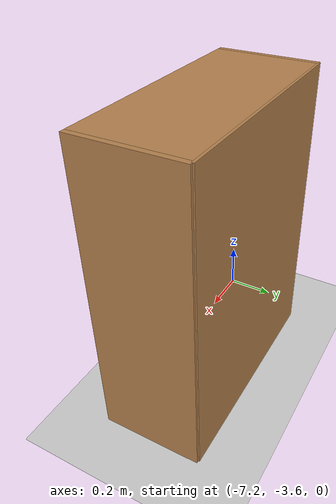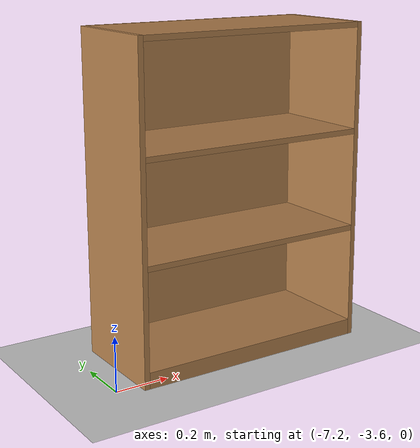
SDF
<sdf version="1.7">
 <world name="default">
  <model name="ground_plane">
   <static>1</static>
   <link name="link">
    <collision name="collision">
     <geometry><plane><normal>0 0 1</normal><size>100 100</size></plane></geometry>
     <surface><friction><ode><mu>1</mu><mu2>1</mu2></ode></friction></surface>
    </collision>
    <visual name="visual">
     <cast_shadows>0</cast_shadows>
     <geometry><plane><normal>0 0 1</normal><size>100 100</size></plane></geometry>
     <material>
      <script><uri>file://media/materials/scripts/gazebo.material</uri><name>Gazebo/Grey</name></script>
     </material>
    </visual>
    <velocity_decay><linear>0</linear><angular>0</angular></velocity_decay>
   </link>
  </model>
  <model name="bookshelf_0">
   <link name="link">
    <inertial><mass>1</mass></inertial>
    <visual name="visual1">
     <pose>0 0.005 0.6 0 -0 0</pose>
     <geometry><box><size>0.9 0.01 1.2</size></box></geometry>
     <material>
      <script><uri>file://media/materials/scripts/gazebo.material</uri><name>Gazebo/Wood</name></script>
      <shader type="pixel"/>
     </material>
    </visual>
    <visual name="visual7">
     <pose>0 -0.195 0.8 0 -0 0</pose>
     <geometry><box><size>0.88 0.4 0.02</size></box></geometry>
     <material>
      <script><uri>file://media/materials/scripts/gazebo.material</uri><name>Gazebo/Wood</name></script>
      <shader type="pixel"/>
     </material>
    </visual>
    <visual name="visual5">
     <pose>0 -0.195 1.19 0 -0 0</pose>
     <geometry><box><size>0.88 0.4 0.02</size></box></geometry>
     <material>
      <script><uri>file://media/materials/scripts/gazebo.material</uri><name>Gazebo/Wood</name></script>
      <shader type="pixel"/>
     </material>
    </visual>
    <visual name="visual6">
     <pose>0 -0.195 0.43 0 -0 0</pose>
     <geometry><box><size>0.88 0.4 0.02</size></box></geometry>
     <material>
      <script><uri>file://media/materials/scripts/gazebo.material</uri><name>Gazebo/Wood</name></script>
      <shader type="pixel"/>
     </material>
    </visual>
    <visual name="visual3">
     <pose>-0.45 -0.195 0.6 0 -0 0</pose>
     <geometry><box><size>0.02 0.4 1.2</size></box></geometry>
     <material>
      <script><uri>file://media/materials/scripts/gazebo.material</uri><name>Gazebo/Wood</name></script>
      <shader type="pixel"/>
     </material>
    </visual>
    <visual name="visual2">
     <pose>0.45 -0.195 0.6 0 -0 0</pose>
     <geometry><box><size>0.02 0.4 1.2</size></box></geometry>
     <material>
      <script><uri>file://media/materials/scripts/gazebo.material</uri><name>Gazebo/Wood</name></script>
      <shader type="pixel"/>
     </material>
    </visual>
    <visual name="visual4">
     <pose>0 -0.195 0.03 0 -0 0</pose>
     <geometry><box><size>0.88 0.4 0.06</size></box></geometry>
     <material>
      <script><uri>file://media/materials/scripts/gazebo.material</uri><name>Gazebo/Wood</name></script>
      <shader type="pixel"/>
     </material>
    </visual>
    <collision name="back">
     <pose>0 0.005 0.6 0 -0 0</pose>
     <geometry><box><size>0.9 0.01 1.2</size></box></geometry>
     <surface>
      <friction>
       <ode><mu>1</mu><mu2>1</mu2><fdir1>0 0 0</fdir1><slip1>0</slip1><slip2>0</slip2></ode>
       <torsional>
        <coefficient>1</coefficient>
        <patch_radius>0</patch_radius>
        <surface_radius>0</surface_radius>
        <use_patch_radius>1</use_patch_radius>
        <ode><slip>0</slip></ode>
       </torsional>
      </friction>
      <bounce><restitution_coefficient>0</restitution_coefficient><threshold>1e+06</threshold></bounce>
      <contact>
       <collide_without_contact>0</collide_without_contact>
       <collide_without_contact_bitmask>1</collide_without_contact_bitmask>
       <collide_bitmask>1</collide_bitmask>
       <ode>
        <soft_cfm>0</soft_cfm>
        <soft_erp>0.2</soft_erp>
        <kp>1e+13</kp>
        <kd>1</kd>
        <max_vel>0.01</max_vel>
        <min_depth>0</min_depth>
       </ode>
       <bullet>
        <split_impulse>1</split_impulse>
        <split_impulse_penetration_threshold>-0.01</split_impulse_penetration_threshold>
        <soft_cfm>0</soft_cfm>
        <soft_erp>0.2</soft_erp>
        <kp>1e+13</kp>
        <kd>1</kd>
       </bullet>
      </contact>
     </surface>
    </collision>
    <collision name="right_side">
     <pose>-0.45 -0.195 0.6 0 -0 0</pose>
     <geometry><box><size>0.02 0.4 1.2</size></box></geometry>
     <surface>
      <friction>
       <ode><mu>1</mu><mu2>1</mu2><fdir1>0 0 0</fdir1><slip1>0</slip1><slip2>0</slip2></ode>
       <torsional>
        <coefficient>1</coefficient>
        <patch_radius>0</patch_radius>
        <surface_radius>0</surface_radius>
        <use_patch_radius>1</use_patch_radius>
        <ode><slip>0</slip></ode>
       </torsional>
      </friction>
      <bounce><restitution_coefficient>0</restitution_coefficient><threshold>1e+06</threshold></bounce>
      <contact>
       <collide_without_contact>0</collide_without_contact>
       <collide_without_contact_bitmask>1</collide_without_contact_bitmask>
       <collide_bitmask>1</collide_bitmask>
       <ode>
        <soft_cfm>0</soft_cfm>
        <soft_erp>0.2</soft_erp>
        <kp>1e+13</kp>
        <kd>1</kd>
        <max_vel>0.01</max_vel>
        <min_depth>0</min_depth>
       </ode>
       <bullet>
        <split_impulse>1</split_impulse>
        <split_impulse_penetration_threshold>-0.01</split_impulse_penetration_threshold>
        <soft_cfm>0</soft_cfm>
        <soft_erp>0.2</soft_erp>
        <kp>1e+13</kp>
        <kd>1</kd>
       </bullet>
      </contact>
     </surface>
    </collision>
    <collision name="left_side">
     <pose>0.45 -0.195 0.6 0 -0 0</pose>
     <geometry><box><size>0.02 0.4 1.2</size></box></geometry>
     <surface>
      <friction>
       <ode><mu>1</mu><mu2>1</mu2><fdir1>0 0 0</fdir1><slip1>0</slip1><slip2>0</slip2></ode>
       <torsional>
        <coefficient>1</coefficient>
        <patch_radius>0</patch_radius>
        <surface_radius>0</surface_radius>
        <use_patch_radius>1</use_patch_radius>
        <ode><slip>0</slip></ode>
       </torsional>
      </friction>
      <bounce><restitution_coefficient>0</restitution_coefficient><threshold>1e+06</threshold></bounce>
      <contact>
       <collide_without_contact>0</collide_without_contact>
       <collide_without_contact_bitmask>1</collide_without_contact_bitmask>
       <collide_bitmask>1</collide_bitmask>
       <ode>
        <soft_cfm>0</soft_cfm>
        <soft_erp>0.2</soft_erp>
        <kp>1e+13</kp>
        <kd>1</kd>
        <max_vel>0.01</max_vel>
        <min_depth>0</min_depth>
       </ode>
       <bullet>
        <split_impulse>1</split_impulse>
        <split_impulse_penetration_threshold>-0.01</split_impulse_penetration_threshold>
        <soft_cfm>0</soft_cfm>
        <soft_erp>0.2</soft_erp>
        <kp>1e+13</kp>
        <kd>1</kd>
       </bullet>
      </contact>
     </surface>
    </collision>
    <collision name="high_shelf">
     <pose>0 -0.195 0.8 0 -0 0</pose>
     <geometry><box><size>0.88 0.4 0.02</size></box></geometry>
     <surface>
      <friction>
       <ode><mu>1</mu><mu2>1</mu2><fdir1>0 0 0</fdir1><slip1>0</slip1><slip2>0</slip2></ode>
       <torsional>
        <coefficient>1</coefficient>
        <patch_radius>0</patch_radius>
        <surface_radius>0</surface_radius>
        <use_patch_radius>1</use_patch_radius>
        <ode><slip>0</slip></ode>
       </torsional>
      </friction>
      <bounce><restitution_coefficient>0</restitution_coefficient><threshold>1e+06</threshold></bounce>
      <contact>
       <collide_without_contact>0</collide_without_contact>
       <collide_without_contact_bitmask>1</collide_without_contact_bitmask>
       <collide_bitmask>1</collide_bitmask>
       <ode>
        <soft_cfm>0</soft_cfm>
        <soft_erp>0.2</soft_erp>
        <kp>1e+13</kp>
        <kd>1</kd>
        <max_vel>0.01</max_vel>
        <min_depth>0</min_depth>
       </ode>
       <bullet>
        <split_impulse>1</split_impulse>
        <split_impulse_penetration_threshold>-0.01</split_impulse_penetration_threshold>
        <soft_cfm>0</soft_cfm>
        <soft_erp>0.2</soft_erp>
        <kp>1e+13</kp>
        <kd>1</kd>
       </bullet>
      </contact>
     </surface>
    </collision>
    <collision name="bottom">
     <pose>0 -0.195 0.03 0 -0 0</pose>
     <geometry><box><size>0.88 0.4 0.06</size></box></geometry>
     <surface>
      <friction>
       <ode><mu>1</mu><mu2>1</mu2><fdir1>0 0 0</fdir1><slip1>0</slip1><slip2>0</slip2></ode>
       <torsional>
        <coefficient>1</coefficient>
        <patch_radius>0</patch_radius>
        <surface_radius>0</surface_radius>
        <use_patch_radius>1</use_patch_radius>
        <ode><slip>0</slip></ode>
       </torsional>
      </friction>
      <bounce><restitution_coefficient>0</restitution_coefficient><threshold>1e+06</threshold></bounce>
      <contact>
       <collide_without_contact>0</collide_without_contact>
       <collide_without_contact_bitmask>1</collide_without_contact_bitmask>
       <collide_bitmask>1</collide_bitmask>
       <ode>
        <soft_cfm>0</soft_cfm>
        <soft_erp>0.2</soft_erp>
        <kp>1e+13</kp>
        <kd>1</kd>
        <max_vel>0.01</max_vel>
        <min_depth>0</min_depth>
       </ode>
       <bullet>
        <split_impulse>1</split_impulse>
        <split_impulse_penetration_threshold>-0.01</split_impulse_penetration_threshold>
        <soft_cfm>0</soft_cfm>
        <soft_erp>0.2</soft_erp>
        <kp>1e+13</kp>
        <kd>1</kd>
       </bullet>
      </contact>
     </surface>
    </collision>
    <collision name="top">
     <pose>0 -0.195 1.19 0 -0 0</pose>
     <geometry><box><size>0.88 0.4 0.02</size></box></geometry>
     <surface>
      <friction>
       <ode><mu>1</mu><mu2>1</mu2><fdir1>0 0 0</fdir1><slip1>0</slip1><slip2>0</slip2></ode>
       <torsional>
        <coefficient>1</coefficient>
        <patch_radius>0</patch_radius>
        <surface_radius>0</surface_radius>
        <use_patch_radius>1</use_patch_radius>
        <ode><slip>0</slip></ode>
       </torsional>
      </friction>
      <bounce><restitution_coefficient>0</restitution_coefficient><threshold>1e+06</threshold></bounce>
      <contact>
       <collide_without_contact>0</collide_without_contact>
       <collide_without_contact_bitmask>1</collide_without_contact_bitmask>
       <collide_bitmask>1</collide_bitmask>
       <ode>
        <soft_cfm>0</soft_cfm>
        <soft_erp>0.2</soft_erp>
        <kp>1e+13</kp>
        <kd>1</kd>
        <max_vel>0.01</max_vel>
        <min_depth>0</min_depth>
       </ode>
       <bullet>
        <split_impulse>1</split_impulse>
        <split_impulse_penetration_threshold>-0.01</split_impulse_penetration_threshold>
        <soft_cfm>0</soft_cfm>
        <soft_erp>0.2</soft_erp>
        <kp>1e+13</kp>
        <kd>1</kd>
       </bullet>
      </contact>
     </surface>
    </collision>
    <collision name="low_shelf">
     <pose>0 -0.195 0.43 0 -0 0</pose>
     <geometry><box><size>0.88 0.4 0.02</size></box></geometry>
     <surface>
      <friction>
       <ode><mu>1</mu><mu2>1</mu2><fdir1>0 0 0</fdir1><slip1>0</slip1><slip2>0</slip2></ode>
       <torsional>
        <coefficient>1</coefficient>
        <patch_radius>0</patch_radius>
        <surface_radius>0</surface_radius>
        <use_patch_radius>1</use_patch_radius>
        <ode><slip>0</slip></ode>
       </torsional>
      </friction>
      <bounce><restitution_coefficient>0</restitution_coefficient><threshold>1e+06</threshold></bounce>
      <contact>
       <collide_without_contact>0</collide_without_contact>
       <collide_without_contact_bitmask>1</collide_without_contact_bitmask>
       <collide_bitmask>1</collide_bitmask>
       <ode>
        <soft_cfm>0</soft_cfm>
        <soft_erp>0.2</soft_erp>
        <kp>1e+13</kp>
        <kd>1</kd>
        <max_vel>0.01</max_vel>
        <min_depth>0</min_depth>
       </ode>
       <bullet>
        <split_impulse>1</split_impulse>
        <split_impulse_penetration_threshold>-0.01</split_impulse_penetration_threshold>
        <soft_cfm>0</soft_cfm>
        <soft_erp>0.2</soft_erp>
        <kp>1e+13</kp>
        <kd>1</kd>
       </bullet>
      </contact>
     </surface>
    </collision>
   </link>
   <static>1</static>
   <pose>-6.65359 -3.24846 0 0 -0 0</pose>
  </model>
 </world>
</sdf>
